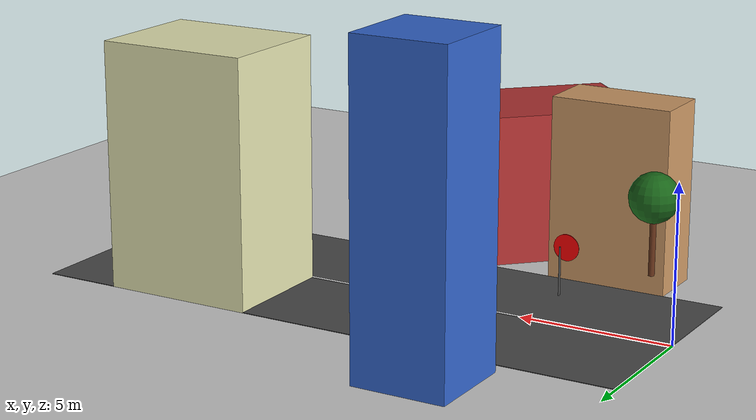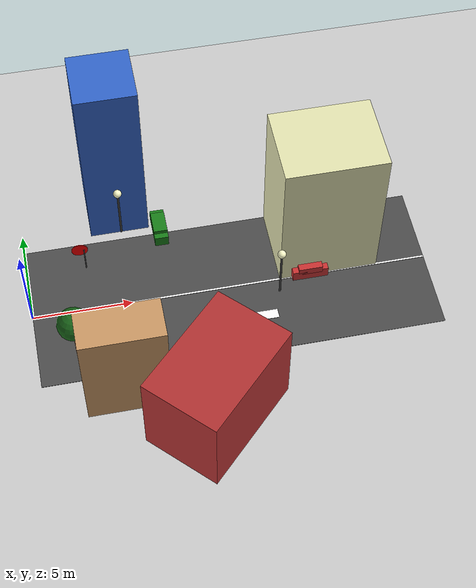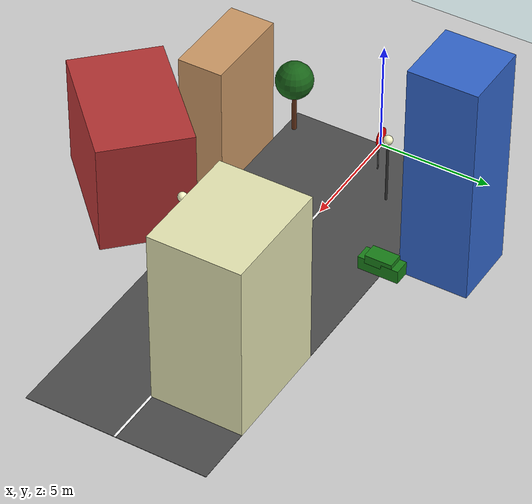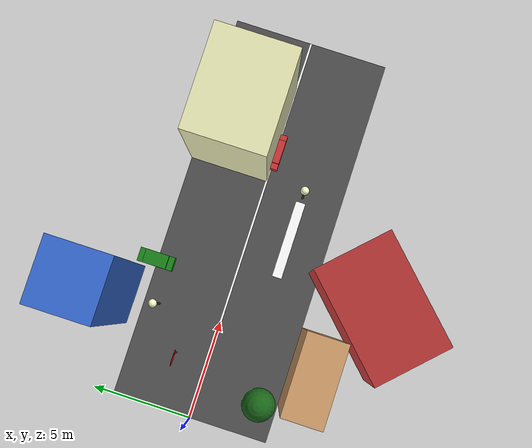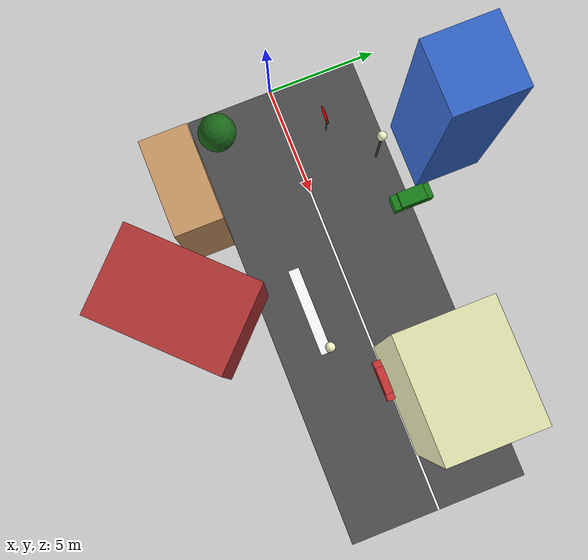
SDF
<?xml version="1.0" ?>
<sdf version="1.6">
  <world name="urban_city_test_world">

    <!-- Окружающая среда -->
    <include>
      <uri>model://sun</uri>
    </include>

    <include>
      <uri>model://ground_plane</uri>
    </include>

    <physics type="ode">
      <max_step_size>0.001</max_step_size>
      <real_time_factor>1</real_time_factor>
      <real_time_update_rate>1000</real_time_update_rate>
    </physics>

    <!-- Городская инфраструктура -->

    <!-- Дороги -->
    <model name="main_road">
      <pose>10 0 0.01 0 0 0</pose>
      <static>true</static>
      <link name="link">
        <visual name="visual">
          <geometry>
            <box><size>20 8 0.02</size></box>
          </geometry>
          <material>
            <ambient>0.3 0.3 0.3 1</ambient>
            <diffuse>0.3 0.3 0.3 1</diffuse>
          </material>
        </visual>
      </link>
    </model>

    <model name="road_marking_center">
      <pose>10 0 0.02 0 0 0</pose>
      <static>true</static>
      <link name="link">
        <visual name="visual">
          <geometry>
            <box><size>20 0.1 0.03</size></box>
          </geometry>
          <material>
            <ambient>1 1 1 1</ambient>
            <diffuse>1 1 1 1</diffuse>
          </material>
        </visual>
      </link>
    </model>

    <!-- Здания -->

    <!-- Высотное здание справа -->
    <model name="skyscraper_right">
      <pose>5 6 5 0 0 0</pose>
      <static>true</static>
      <link name="link">
        <visual name="visual">
          <geometry>
            <box><size>3 3 10</size></box>
          </geometry>
          <material>
            <ambient>0.2 0.4 0.8 1</ambient>
            <diffuse>0.2 0.4 0.8 1</diffuse>
          </material>
        </visual>
        <!-- Окна -->
        <visual name="windows">
          <pose>0 0 0 0 0 0</pose>
          <geometry>
            <box><size>2.8 2.8 9.8</size></box>
          </geometry>
          <material>
            <ambient>0.8 0.9 1 0.3</ambient>
            <diffuse>0.8 0.9 1 0.3</diffuse>
          </material>
        </visual>
      </link>
    </model>

    <!-- Жилое здание слева -->
    <model name="apartment_building_left">
      <pose>4 -5 3 0 0 0</pose>
      <static>true</static>
      <link name="link">
        <visual name="visual">
          <geometry>
            <box><size>4 2 6</size></box>
          </geometry>
          <material>
            <ambient>0.8 0.6 0.4 1</ambient>
            <diffuse>0.8 0.6 0.4 1</diffuse>
          </material>
        </visual>
      </link>
    </model>

    <!-- Офисное здание вдали -->
    <model name="office_building_far">
      <pose>15 2 4 0 0 0</pose>
      <static>true</static>
      <link name="link">
        <visual name="visual">
          <geometry>
            <box><size>5 4 8</size></box>
          </geometry>
          <material>
            <ambient>0.9 0.9 0.7 1</ambient>
            <diffuse>0.9 0.9 0.7 1</diffuse>
          </material>
        </visual>
      </link>
    </model>

    <!-- Торговый центр -->
    <model name="shopping_mall">
      <pose>8 -7 2.5 0 0 0.785</pose>
      <static>true</static>
      <link name="link">
        <visual name="visual">
          <geometry>
            <box><size>6 4 5</size></box>
          </geometry>
          <material>
            <ambient>0.7 0.2 0.2 1</ambient>
            <diffuse>0.7 0.2 0.2 1</diffuse>
          </material>
        </visual>
      </link>
    </model>

    <!-- Уличная инфраструктура -->

    <!-- Уличные фонари -->
    <model name="street_light_1">
      <pose>5 3 2 0 0 0</pose>
      <static>true</static>
      <link name="link">
        <!-- Столб -->
        <visual name="pole">
          <pose>0 0 1.5 0 0 0</pose>
          <geometry>
            <cylinder>
              <radius>0.05</radius>
              <length>3</length>
            </cylinder>
          </geometry>
          <material>
            <ambient>0.2 0.2 0.2 1</ambient>
            <diffuse>0.2 0.2 0.2 1</diffuse>
          </material>
        </visual>
        <!-- Фонарь -->
        <visual name="lamp">
          <pose>0 0 3 0 0 0</pose>
          <geometry>
            <sphere><radius>0.2</radius></sphere>
          </geometry>
          <material>
            <ambient>1 1 0.8 1</ambient>
            <diffuse>1 1 0.8 1</diffuse>
          </material>
        </visual>
      </link>
    </model>

    <model name="street_light_2">
      <pose>12 -2 2 0 0 0</pose>
      <static>true</static>
      <link name="link">
        <visual name="pole">
          <pose>0 0 1.5 0 0 0</pose>
          <geometry>
            <cylinder>
              <radius>0.05</radius>
              <length>3</length>
            </cylinder>
          </geometry>
          <material>
            <ambient>0.2 0.2 0.2 1</ambient>
            <diffuse>0.2 0.2 0.2 1</diffuse>
          </material>
        </visual>
        <visual name="lamp">
          <pose>0 0 3 0 0 0</pose>
          <geometry>
            <sphere><radius>0.2</radius></sphere>
          </geometry>
          <material>
            <ambient>1 1 0.8 1</ambient>
            <diffuse>1 1 0.8 1</diffuse>
          </material>
        </visual>
      </link>
    </model>

    <!-- Дорожные знаки -->
    <model name="stop_sign">
      <pose>3 1.5 1.5 0 0 1.57</pose>
      <static>true</static>
      <link name="link">
        <!-- Столб знака -->
        <visual name="pole">
          <pose>0 0 0.75 0 0 0</pose>
          <geometry>
            <cylinder>
              <radius>0.03</radius>
              <length>1.5</length>
            </cylinder>
          </geometry>
          <material>
            <ambient>0.3 0.3 0.3 1</ambient>
            <diffuse>0.3 0.3 0.3 1</diffuse>
          </material>
        </visual>
        <!-- Знак -->
        <visual name="sign">
          <pose>0 0.2 1.5 0 1.57 0</pose>
          <geometry>
            <cylinder>
              <radius>0.4</radius>
              <length>0.02</length>
            </cylinder>
          </geometry>
          <material>
            <ambient>1 0 0 1</ambient>
            <diffuse>1 0 0 1</diffuse>
          </material>
        </visual>
      </link>
    </model>

    <!-- Транспортные средства -->

    <!-- Припаркованная машина -->
    <model name="parked_car">
      <pose>7 4 0.5 0 0 1.57</pose>
      <static>true</static>
      <link name="link">
        <visual name="body">
          <geometry>
            <box><size>1.8 0.7 0.6</size></box>
          </geometry>
          <material>
            <ambient>0.1 0.5 0.1 1</ambient>
            <diffuse>0.1 0.5 0.1 1</diffuse>
          </material>
        </visual>
        <visual name="top">
          <pose>0 0 0.3 0 0 0</pose>
          <geometry>
            <box><size>1.2 0.7 0.4</size></box>
          </geometry>
          <material>
            <ambient>0.1 0.5 0.1 1</ambient>
            <diffuse>0.1 0.5 0.1 1</diffuse>
          </material>
        </visual>
      </link>
    </model>

    <!-- Движущийся автомобиль (вдали) -->
    <model name="moving_car">
      <pose>14 0 0.5 0 0 0</pose>
      <static>true</static>
      <link name="link">
        <visual name="body">
          <geometry>
            <box><size>1.8 0.7 0.6</size></box>
          </geometry>
          <material>
            <ambient>0.8 0.2 0.2 1</ambient>
            <diffuse>0.8 0.2 0.2 1</diffuse>
          </material>
        </visual>
        <visual name="top">
          <pose>0 0 0.3 0 0 0</pose>
          <geometry>
            <box><size>1.2 0.7 0.4</size></box>
          </geometry>
          <material>
            <ambient>0.8 0.2 0.2 1</ambient>
            <diffuse>0.8 0.2 0.2 1</diffuse>
          </material>
        </visual>
      </link>
    </model>

    <!-- Пешеходный переход -->
    <model name="crosswalk">
      <pose>10 -2 0.02 0 0 0</pose>
      <static>true</static>
      <link name="link">
        <visual name="visual">
          <geometry>
            <box><size>4 0.5 0.03</size></box>
          </geometry>
          <material>
            <ambient>1 1 1 1</ambient>
            <diffuse>1 1 1 1</diffuse>
          </material>
        </visual>
      </link>
    </model>

    <!-- Деревья и растительность -->

    <model name="tree_1">
      <pose>2 -3 1 0 0 0</pose>
      <static>true</static>
      <link name="link">
        <!-- Ствол -->
        <visual name="trunk">
          <pose>0 0 1 0 0 0</pose>
          <geometry>
            <cylinder>
              <radius>0.1</radius>
              <length>2</length>
            </cylinder>
          </geometry>
          <material>
            <ambient>0.4 0.2 0.1 1</ambient>
            <diffuse>0.4 0.2 0.1 1</diffuse>
          </material>
        </visual>
        <!-- Крона -->
        <visual name="crown">
          <pose>0 0 2.5 0 0 0</pose>
          <geometry>
            <sphere><radius>0.8</radius></sphere>
          </geometry>
          <material>
            <ambient>0.1 0.4 0.1 1</ambient>
            <diffuse>0.1 0.4 0.1 1</diffuse>
          </material>
        </visual>
      </link>
    </model>

    <model name="tree_2">
      <pose>6 -8 1 0 0 0</pose>
      <static>true</static>
      <link name="link">
        <visual name="trunk">
          <pose>0 0 1 0 0 0</pose>
          <geometry>
            <cylinder>
              <radius>0.1</radius>
              <length>2</length>
            </cylinder>
          </geometry>
          <material>
            <ambient>0.4 0.2 0.1 1</ambient>
            <diffuse>0.4 0.2 0.1 1</diffuse>
          </material>
        </visual>
        <visual name="crown">
          <pose>0 0 2.5 0 0 0</pose>
          <geometry>
            <sphere><radius>0.8</radius></sphere>
          </geometry>
          <material>
            <ambient>0.1 0.4 0.1 1</ambient>
            <diffuse>0.1 0.4 0.1 1</diffuse>
          </material>
        </visual>
      </link>
    </model>

  </world>
</sdf>
